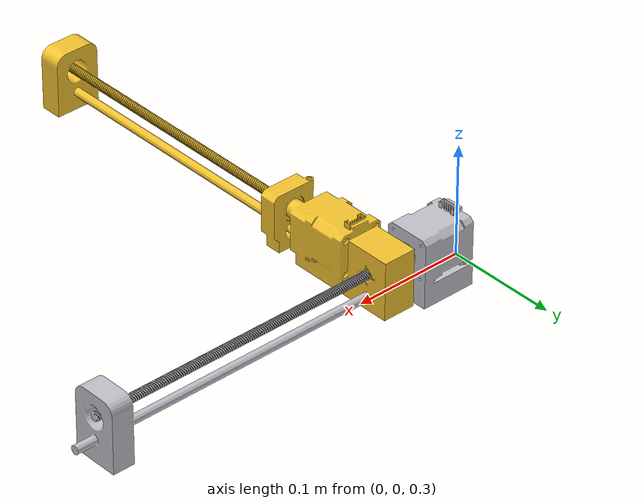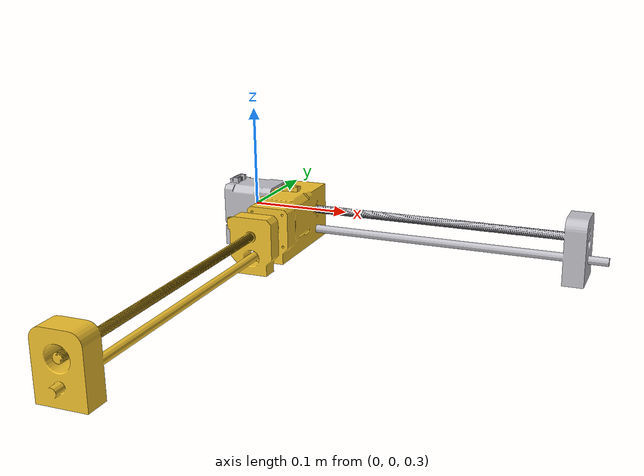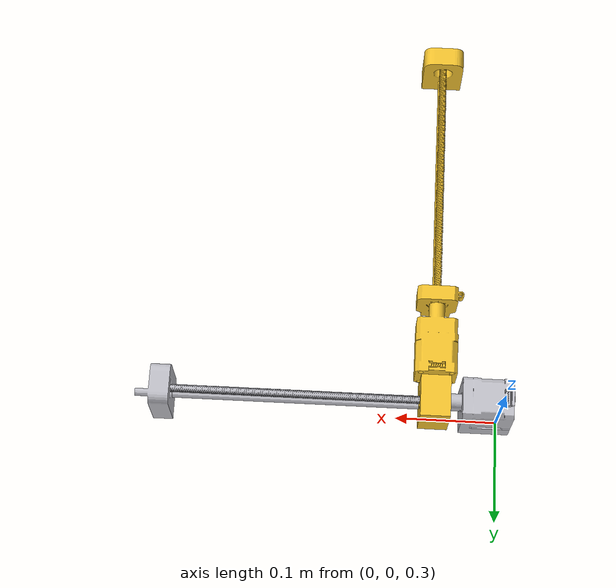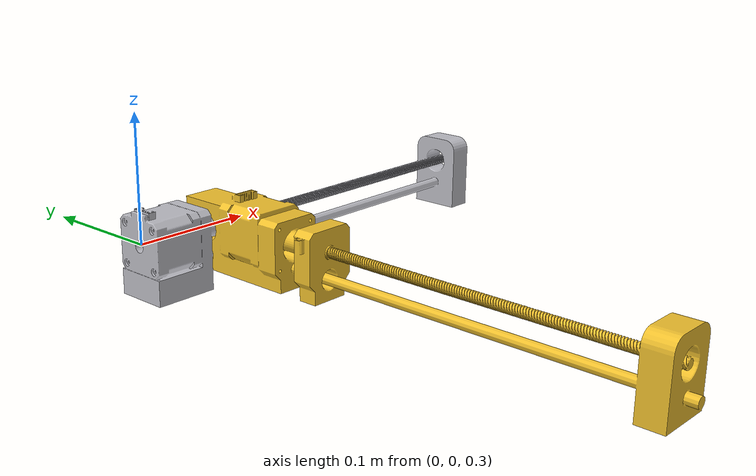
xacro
<?xml version="1.0"?>
<robot xmlns:xacro="http://www.ros.org/wiki/xacro" name="jim">

  <xacro:arg name="use_sim"     default="true"/>
  <xacro:arg name="params_file" default="$(find jim_bringup)/config/controllers.yaml"/>

  <!-- Height of base_link above the ground plane, metres. -->
  <xacro:property name="mount_height" value="0.30"/>

  <!-- Mechanical travel, metres. Measured nut-face to end-support. -->
  <xacro:property name="travel_x" value="0.250"/>
  <xacro:property name="travel_y" value="0.250"/>

  <xacro:property name="screw_lead"   value="0.008"/>
  <xacro:property name="steps_per_rev" value="200"/>
  <xacro:property name="microsteps"    value="16"/>

  <!-- Velocity ceiling. Set by lead screw critical speed (whip), not by
       motor torque. 4.76e6 * 6.2 / 300^2 = 328 rpm, derated 80%, x 8 mm. -->
  <xacro:property name="max_vel" value="0.035"/>
  <xacro:property name="max_eff" value="50.0"/>

  <!-- Link masses, kg. Estimated - CAD had no materials assigned.
       Replace with weighed values before any dynamics work. -->
  <xacro:property name="mass_base" value="0.75"/>
  <xacro:property name="mass_xc"   value="0.90"/>
  <xacro:property name="mass_yc"   value="0.15"/>

  <!-- Joint origins straight from the CAD export. -->
  <xacro:property name="jx_xyz" value="0.073575 -0.018445 0.0064807"/>
  <xacro:property name="jx_rpy" value="3.14159265 0 0"/>

  <!-- Y origin CORRECTED: exporter gave 0.35117 (nut fully extended).
       Home is one full travel back from there. -->
  <xacro:property name="jy_y" value="${0.35117 - travel_y}"/>

  <xacro:property name="mesh" value="package://jim_description/meshes"/>

  <!-- ==================================================================
       MATERIALS
       ================================================================== -->
  <material name="jim_grey">  <color rgba="0.75 0.75 0.78 1.0"/></material>
  <material name="jim_gold">  <color rgba="0.95 0.76 0.18 1.0"/></material>
  <material name="jim_red">   <color rgba="0.85 0.15 0.15 1.0"/></material>

  <xacro:macro name="box_inertia" params="m x y z o_xyz">
    <inertial>
      <origin xyz="${o_xyz}" rpy="0 0 0"/>
      <mass value="${m}"/>
      <inertia
        ixx="${m*(y*y + z*z)/12.0}" ixy="0.0" ixz="0.0"
        iyy="${m*(x*x + z*z)/12.0}" iyz="0.0"
        izz="${m*(x*x + y*y)/12.0}"/>
    </inertial>
  </xacro:macro>

  <!-- ==================================================================
       LINKS
       ================================================================== -->

  <!-- base_link: frame, X motor, X coupler, X screw, X guide rods,
       both X end brackets. Anything bolted down or merely spinning. -->
  <link name="base_link">
    <xacro:box_inertia m="${mass_base}" x="0.381" y="0.042" z="0.067"
                       o_xyz="0.1745 -0.0184 -0.0009"/>
    <visual>
      <origin xyz="0 0 0" rpy="0 0 0"/>
      <geometry><mesh filename="${mesh}/base_link.stl"/></geometry>
      <material name="jim_grey"/>
    </visual>
    <collision>
      <origin xyz="0.1745 -0.0184 -0.0009" rpy="0 0 0"/>
      <geometry><box size="0.381 0.042 0.067"/></geometry>
    </collision>
  </link>

  <!-- x_carriage: X nut, its block, AND the entire Y axis assembly -
       Y motor, Y coupler, Y screw, Y rods, Y end bracket. All of it
       rides on X, so all of it belongs to this link. -->
  <link name="x_carriage">
    <xacro:box_inertia m="${mass_xc}" x="0.042" y="0.415" z="0.062"
                       o_xyz="-0.0119 0.1865 0.0009"/>
    <visual>
      <origin xyz="0 0 0" rpy="0 0 0"/>
      <geometry><mesh filename="${mesh}/x_carriage.stl"/></geometry>
      <material name="jim_gold"/>
    </visual>
  </link>

  <!-- y_carriage: Y nut, its block, laser head. -->
  <link name="y_carriage">
    <xacro:box_inertia m="${mass_yc}" x="0.047" y="0.016" z="0.054"
                       o_xyz="-0.0154 0.007 0.0093"/>
    <visual>
      <origin xyz="0 0 0" rpy="0 0 0"/>
      <geometry><mesh filename="${mesh}/y_carriage.stl"/></geometry>
      <material name="jim_gold"/>
    </visual>
  </link>

  <link name="laser_aim_link"/>

  <joint name="laser_aim_joint" type="fixed">
    <origin xyz="-0.0154 0.007 0.0175" rpy="0 0 0"/>
    <parent link="y_carriage"/>
    <child  link="laser_aim_link"/>
  </joint>

  <!-- ==================================================================
       JOINTS
       ================================================================== -->

  <joint name="joint_x" type="prismatic">
    <origin xyz="${jx_xyz}" rpy="${jx_rpy}"/>
    <parent link="base_link"/>
    <child  link="x_carriage"/>
    <axis xyz="1 0 0"/>
    <limit lower="0.0" upper="${travel_x}"
           effort="${max_eff}" velocity="${max_vel}"/>
  </joint>

  <joint name="joint_y" type="prismatic">
    <origin xyz="0.0005 ${jy_y} -0.004" rpy="0 0 0"/>
    <parent link="x_carriage"/>
    <child  link="y_carriage"/>
    <axis xyz="0 1 0"/>
    <limit lower="0.0" upper="${travel_y}"
           effort="${max_eff}" velocity="${max_vel}"/>
  </joint>

  <link name="world"/>

  <joint name="world_to_base" type="fixed">
    <origin xyz="0 0 ${mount_height}" rpy="0 0 0"/>
    <parent link="world"/>
    <child  link="base_link"/>
  </joint>

  <!-- ==================================================================
       CONTROL
       ================================================================== -->
  <xacro:include filename="$(find jim_description)/urdf/jim.ros2_control.xacro"/>

  <xacro:jim_ros2_control
      use_sim="$(arg use_sim)"
      travel_x="${travel_x}"
      travel_y="${travel_y}"
      max_vel="${max_vel}"
      params_file="$(arg params_file)"/>

</robot>
